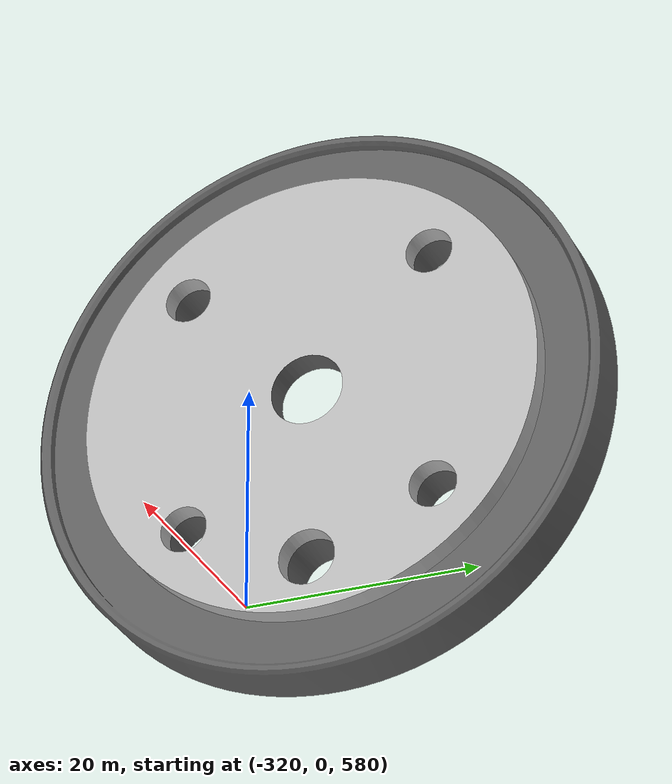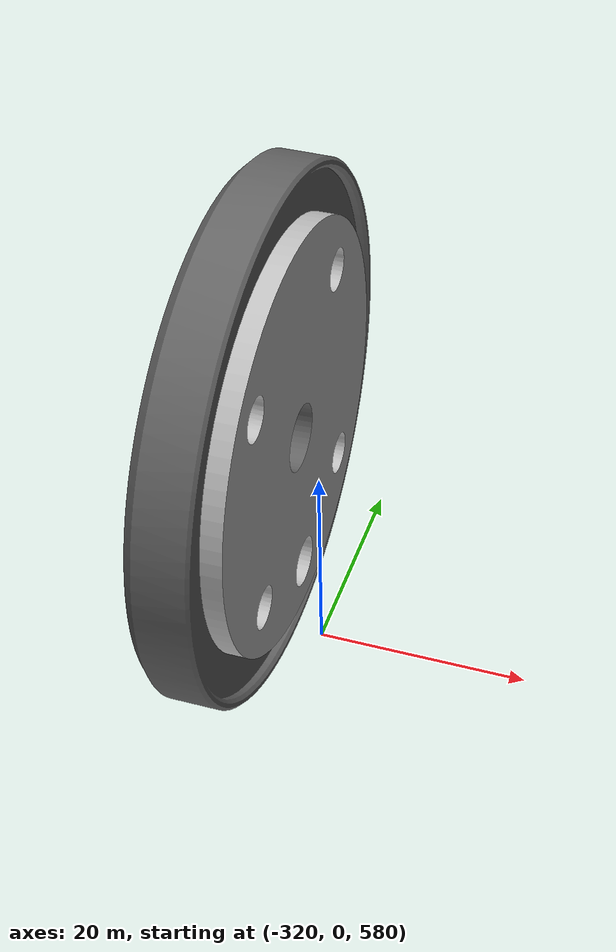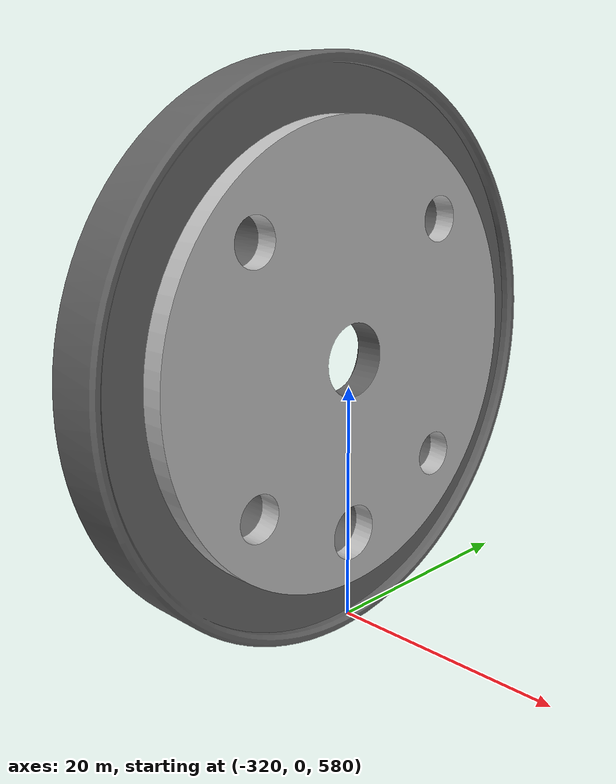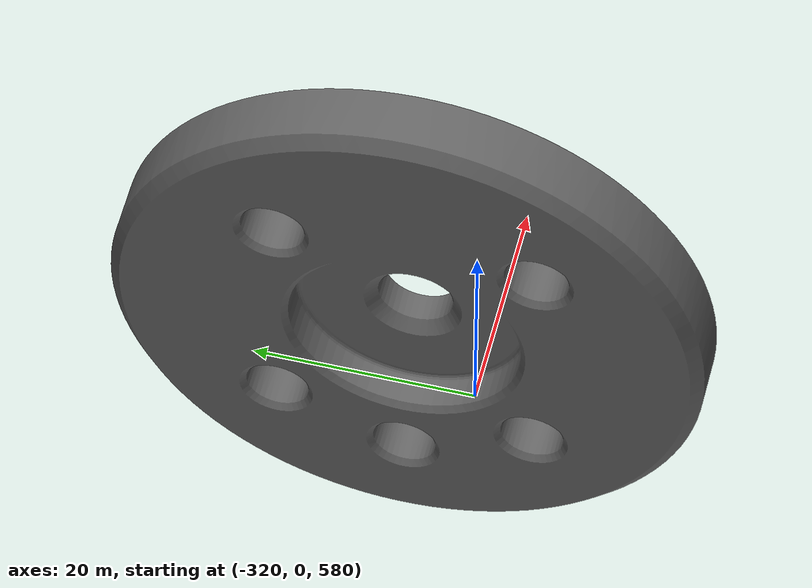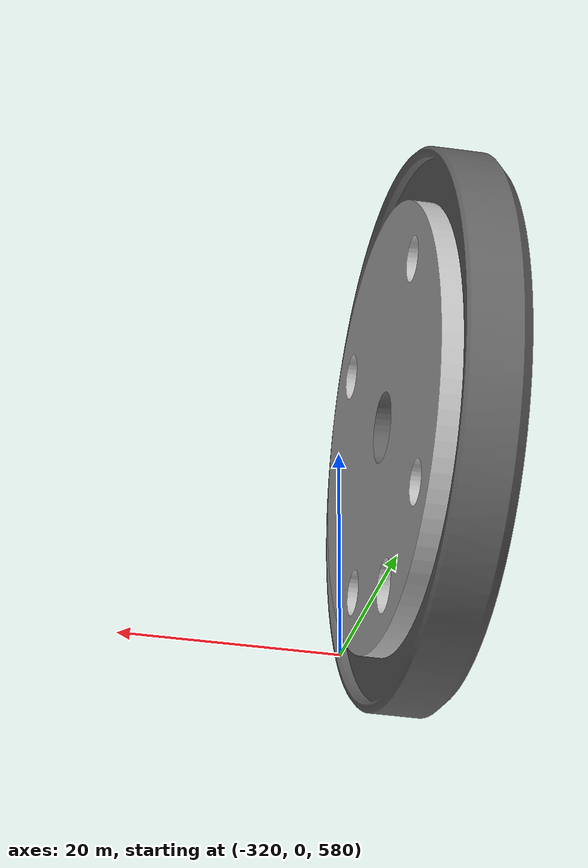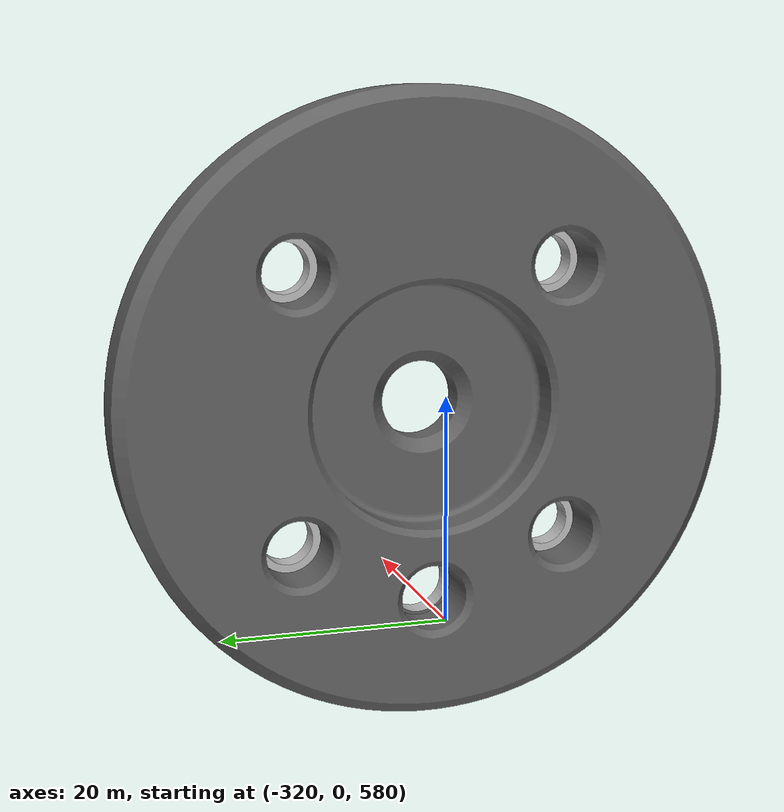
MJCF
<mujoco model="J6">
  <default>
    <default class="visual">
      <geom group="2" type="mesh" contype="0" conaffinity="0"/>
    </default>
    <default class="collision">
      <geom group="3" type="mesh"/>
    </default>
  </default>
  <asset>
    <material name="189,189,189" specular="0.5" shininess="0.5" rgba="0.741176 0.741176 0.741176 1.0"/>
    <material name="98,98,98" specular="0.5" shininess="0.5" rgba="0.384314 0.384314 0.384314 1.0"/>
    <mesh file="J6_0.obj"/>
    <mesh file="J6_1.obj"/>
  </asset>
  <worldbody>
    <body name="J6">
      <geom mesh="J6_0" material="98,98,98" class="visual"/>
      <geom mesh="J6_1" material="189,189,189" class="visual"/>
      <geom mesh="J6_0" class="collision"/>
      <geom mesh="J6_1" class="collision"/>
    </body>
  </worldbody>
</mujoco>
